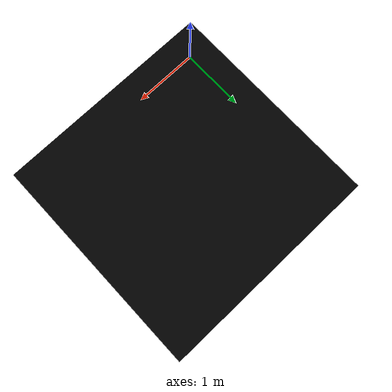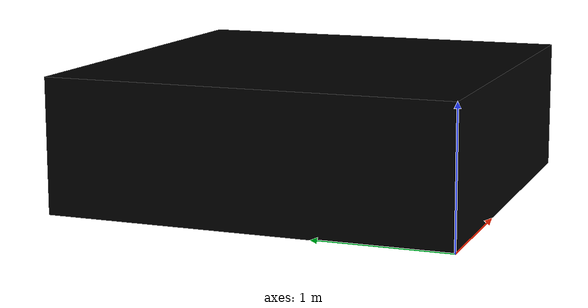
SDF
<?xml version='1.0'?>
<sdf version="1.5">
<model name="obstacle">
  <link name="link">
    <pose>1.5 1.5 0.5 0 0 0</pose>
      <inertial>
        <mass>1.0</mass>
        <inertia>
          <ixx>0.083</ixx>
          <ixy>0.0</ixy>
          <ixz>0.0</ixz>
          <iyy>0.083</iyy>
          <iyz>0.0</iyz>
          <izz>0.083</izz>
        </inertia>
      </inertial>
      <collision name="collision">
        <geometry>
          <box>
            <size>3.0 3.0 1.0</size>
          </box>
        </geometry>
      </collision>
      <visual name="visual">
	<material>
            <ambient>1 0 0 1</ambient>
            <diffuse>0 0 0 1</diffuse>
            <specular>1 0 0 1</specular>
            <emissive>1 0 0 1</emissive>
        </material>
        <geometry>
          <box>
            <size>3.0 3.0 1.0</size>
          </box>
        </geometry>
      </visual>
    </link>
  </model>
</sdf>
